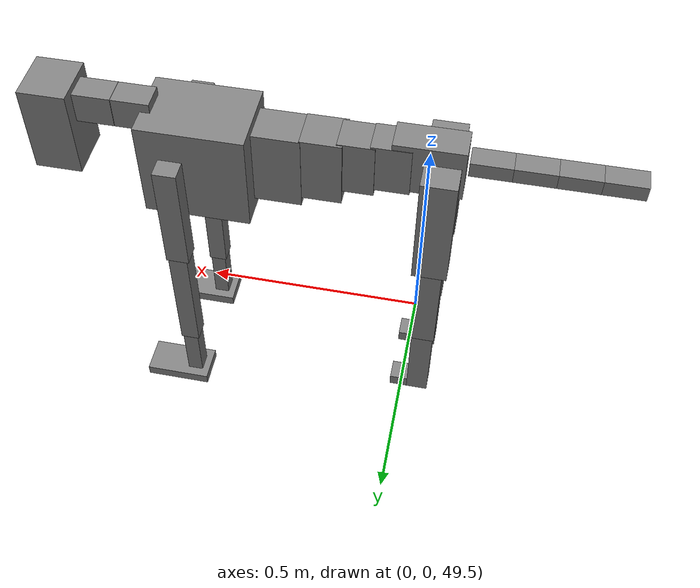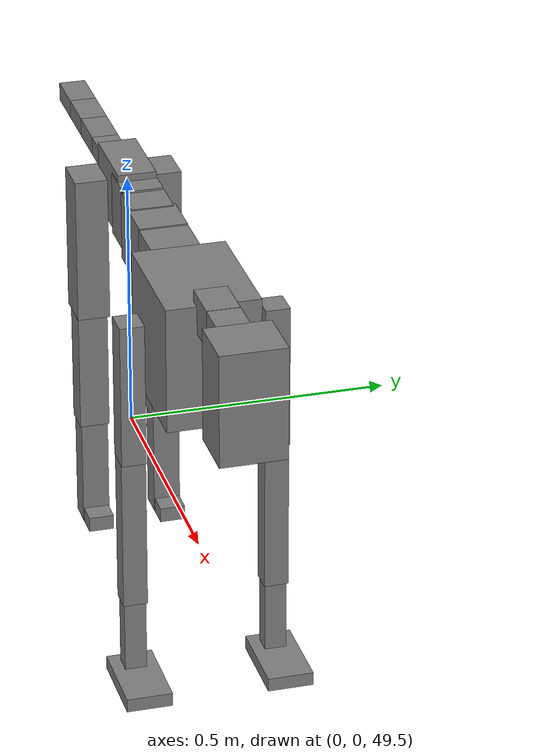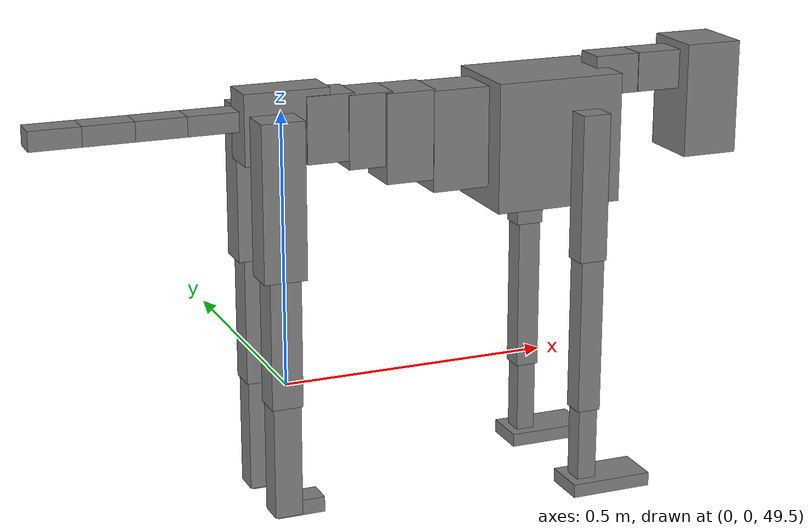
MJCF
<mujoco model="dog">

    <default>
        <joint armature="0.02" stiffness="1" damping="0.2" limited="true"/>
        <geom condim="3" friction="1 0.05 0.05" margin="0.01"/>
        <motor ctrllimited="true" ctrlrange="-1.0 1.0" forcelimited="true" gear="50"/>
    </default>

    <compiler inertiafromgeom="true" angle="radian"/>

    <option timestep="0.016" iterations="50" tolerance="1e-10" solver="Newton" jacobian="dense" cone="pyramidal"/>

    <size nconmax="20000" njmax="60000" nstack="5000000"/>
    <visual>
        <map force="0.1" zfar="30"/>
        <rgba haze="0.15 0.25 0.35 1"/>
        <quality shadowsize="2048"/>
        <global offwidth="800" offheight="800"/>
    </visual>

    <asset>
        <texture type="skybox" builtin="gradient" rgb1="0.3 0.5 0.7" rgb2="0 0 0" width="512" height="512"/>
        <texture name="texplane" type="2d" builtin="checker" rgb1=".2 .3 .4" rgb2=".1 0.15 0.2" width="512" height="512"
                 mark="cross" markrgb=".8 .8 .8"/>
        <texture name="texgeom" type="cube" builtin="flat" mark="cross" width="127" height="1278" rgb1="0.8 0.6 0.4"
                 rgb2="0.8 0.6 0.4" markrgb="1 1 1" random="0.01"/>

        <material name="matplane" reflectance="0.3" texture="texplane" texrepeat="1 1" texuniform="true"/>
        <material name="matgeom" texture="texgeom" texuniform="true" rgba="0.8 0.6 .4 1"/>
    </asset>

    <worldbody>
        <geom name="floor" pos="0 0 0" size="0 0 .25" type="plane" material="matplane" condim="3"/>

        <light directional="false" diffuse=".2 .2 .2" specular="0 0 0" pos="0 0 5" dir="0 0 -1" castshadow="false"/>
        <light mode="targetbodycom" target="torso" directional="false" diffuse=".8 .8 .8" specular="0.3 0.3 0.3"
               pos="0 0 4.0" dir="0 0 -1"/>

        <body name="root" pos="0 0 50">
            <freejoint name="root_1"/>
            <geom type="box" pos="0 0 -0.02" size="0.0774  0.0358  0.063" density="2030"/>

            <body name="spine1" pos="0.054 0 0">
                <joint name="spine1_y" axis="0 1 0" range="0 0.7" limited="true"/>
                <geom type="box" pos="0.02375 0 -0.03" size="0.04375  0.0375  0.05985" density="2030"/>

                <body name="spine2" pos="0.0612 0 0">
                    <joint name="spine2_y" axis="0 1 0" range="-0.15 0.15" limited="true"/>
                    <geom type="box" pos="0.03555  0  -0.04" size="0.04055  0.039  0.06615" density="2030"/>

                    <body name="spine3" pos="0.0730 0 0">
                        <joint name="spine3_y" axis="0 1 0" range="-0.15 0.15" limited="true"/>
                        <geom type="box" pos="0.03555  0  -0.057" size="0.04555  0.0445  0.081" density="2030"/>

                        <body name="spine4" pos="0.0780 0 0">
                            <joint name="spine4_y" axis="0 1 0" range="-0.15 0.15" limited="true"/>
                            <geom type="box" pos="0.05265  0  -0.07" size="0.05265  0.045  0.09135" density="2030"/>

                            <body name="torso" pos="0.1082 0 0">
                                <joint name="torso_y" axis="0 1 0" range="-0.15 0.15" limited="true"/>
                                <geom type="box" pos="0.11925  0  -0.085" size="0.11925  0.085  0.11745"
                                      density="2030"/>

                                <body name="neck1" pos="0.2160  0   0.0180">
                                    <joint name="neck1_y" axis="0 1 0" range="-1.2  -1" limited="true"/>
                                    <geom type="box" pos="0.0423  0  0" size="0.0423  0.03  0.036" density="2325"/>

                                    <body name="neck2" pos="0.0853  0  0">
                                        <joint name="neck2_y" axis="0 1 0" range="0.1  0" limited="true"/>
                                        <geom type="box" pos="0.0423  0  0" size="0.0423  0.03  0.036" density="2325"/>

                                        <body name="head" pos="0.0853  0  0">
                                            <joint name="head_y" axis="0 1 0" range="-0.3  -0.2" limited="true"/>
                                            <geom type="box" pos="0.0531  0  -0.055" size="0.0531  0.06  0.1044"
                                                  density="4030"/>

                                        </body>
                                    </body>
                                </body>

                                <body name="front_shoulder" pos="0.156  0   -0.0480">
                                    <joint name="front_shoulder_y" axis="0 1 0" range="-1 1.5" limited="true"/>
                                    <geom type="box" pos="0 0.13 -0.1077" size="0.0260  0.0222  0.1343" density="1158"/>
                                    <geom type="box" pos="0 -0.13 -0.1077" size="0.0260  0.0222  0.1343"
                                          density="1158"/>

                                    <body name="front_elbow" pos="0  0  -0.2153">
                                        <joint name="front_elbow_y" axis="0 1 0" range="-2 0" limited="true"/>
                                        <geom type="box" pos="0 0.13 -0.1558" size="0.0216  0.0221  0.1558"
                                              density="1081"/>
                                        <geom type="box" pos="0 -0.13 -0.1558" size="0.0216  0.0221  0.1558"
                                              density="1081"/>

                                        <body name="front_wrist" pos="0  0  -0.3115">
                                            <joint name="front_wrist_y" axis="0 1 0" range="-0.2 0" limited="true"/>
                                            <geom type="box" pos="0 0.13 -0.0744" size="0.0179  0.0199  0.0876"
                                                  density="1664"/>
                                            <geom type="box" pos="0 -0.13 -0.0744" size="0.0179  0.0199  0.0876"
                                                  density="1664"/>

                                            <body name="front_finger_end" pos="0  0  -0.1488">
                                                <joint name="front_finger_y" axis="0 1 0" range="-0.4 1"
                                                       limited="true"/>
                                                <geom type="box" pos="0.0418  0.13  0.0025"
                                                      size="0.0766  0.0418  0.0125" density="1515"/>
                                                <geom type="box" pos="0.0418  -0.13  0.0025"
                                                      size="0.0766  0.0418  0.0125" density="1515"/>

                                            </body>

                                        </body>
                                    </body>
                                </body>

                            </body>
                        </body>
                    </body>
                </body>
            </body>

            <body name="back_hip" pos="-0.03 0 -0.018">
                <joint name="back_hip_y" axis="0 1 0" range="-1.5 0.3" limited="true"/>
                <geom type="box" pos="0 0.07 -0.1173" size="0.0390  0.0306  0.1401" density="1154"/>
                <geom type="box" pos="0 -0.07 -0.1173" size="0.0390  0.0306  0.1401" density="1154"/>

                <body name="back_knee" pos="0  0  -0.2346">
                    <joint name="back_knee_y" axis="0 1 0" range="0 2.8" limited="true"/>
                    <geom type="box" pos="0 0.07 -0.1193" size="0.0283  0.0279  0.1348" density="1227"/>
                    <geom type="box" pos="0 -0.07 -0.1193" size="0.0283  0.0279  0.1348" density="1227"/>

                    <body name="back_ankle" pos="0  0  -0.2386">
                        <joint name="back_ankle_y" axis="0 1 0" range="-2.2 0" limited="true"/>
                        <geom type="box" pos="0 0.07 -0.1047" size="0.0253  0.0253  0.1159" density="1284"/>
                        <geom type="box" pos="0 -0.07 -0.1047" size="0.0253  0.0253  0.1159" density="1284"/>

                        <body name="back_toe_end" pos="0  0  -0.2094">
                            <joint name="back_toe_y" axis="0 1 0" range="-0.4 1" limited="true"/>
                            <geom type="box" pos="0.0238  0.07  0.0008" size="0.0436  0.0238  0.0142" density="1515"/>
                            <geom type="box" pos="0.0238  -0.07  0.0008" size="0.0436  0.0238  0.0142" density="1515"/>

                        </body>
                    </body>
                </body>
            </body>

            <body name="tail1" pos="-0.074 0 -0.006">
                <joint name="tail1_y" axis="0 1 0" range="-0.2 0.2" limited="true"/>
                <geom type="box" pos="-0.0536  0  0" size="0.045  0.025  0.0175" density="1587"/>

                <body name="tail2" pos="-0.09 0 0">
                    <joint name="tail2_y" axis="0 1 0" range="-0.2 0.2" limited="true"/>
                    <geom type="box" pos="-0.0536  0  0" size="0.045  0.025  0.0175" density="1587"/>

                    <body name="tail3" pos="-0.09 0 0">
                        <joint name="tail3_y" axis="0 1 0" range="-0.2 0.2" limited="true"/>
                        <geom type="box" pos="-0.0536  0  0" size="0.045  0.025  0.0175" density="1587"/>

                        <body name="tail4" pos="-0.09 0 0">
                            <joint name="tail4_y" axis="0 1 0" range="-0.2 0.2" limited="true"/>
                            <geom type="box" pos="-0.0536  0  0" size="0.045  0.025  0.0175" density="1587"/>

                        </body>
                    </body>
                </body>
            </body>
        </body>
    </worldbody>

    <actuator>
        <motor joint="spine1_y" forcerange="-150 150     "/>
        <motor joint="spine2_y" forcerange="-150 150     "/>
        <motor joint="spine3_y" forcerange="-150 150     "/>
        <motor joint="spine4_y" forcerange="-150 150     "/>
        <motor joint="torso_y" forcerange="-150 150     "/>
        <motor joint="neck1_y" forcerange="-100 100       "/>
        <motor joint="neck2_y" forcerange="-100 100       "/>
        <motor joint="head_y" forcerange="-150 150       "/>
        <motor joint="front_shoulder_y" forcerange="-142.24 105.80"/>
        <motor joint="front_elbow_y" forcerange="-107.19 153.45"/>
        <motor joint="front_wrist_y" forcerange="-70.17 89.19"/>
        <motor joint="front_finger_y" forcerange="-84.80 97.95"/>
        <motor joint="back_hip_y" forcerange="-352.66 254.95"/>
        <motor joint="back_knee_y" forcerange="-369.02 236.46"/>
        <motor joint="back_angle_y" forcerange="-114.66 190.55"/>
        <motor joint="back_toe_y" forcerange="-52.10 58.11"/>
        <motor joint="tail1_y" forcerange="-50 50     "/>
        <motor joint="tail2_y" forcerange="-50 50     "/>
        <motor joint="tail3_y" forcerange="-50 50     "/>
        <motor joint="tail4_y" forcerange="-50 50     "/>
    </actuator>
</mujoco>
